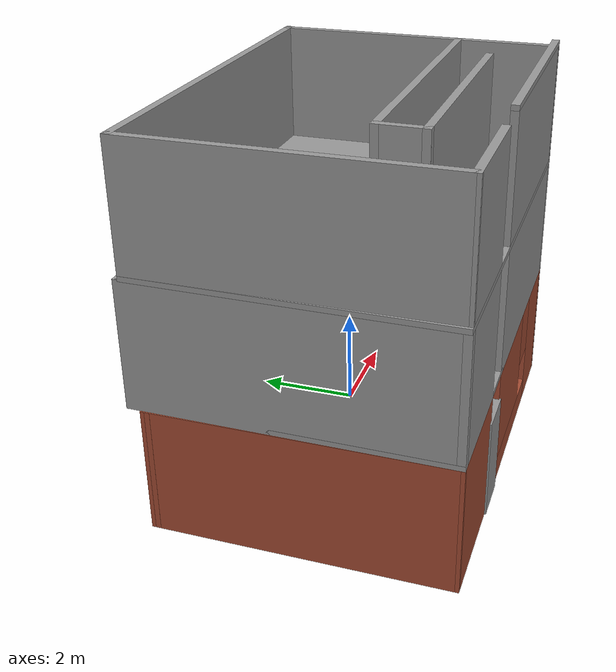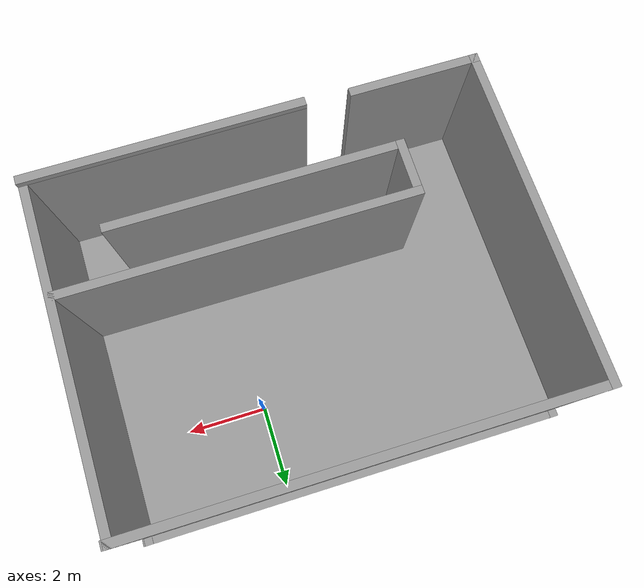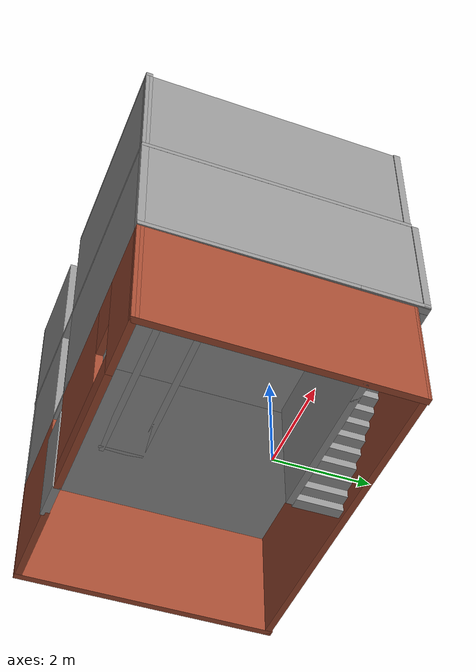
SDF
<?xml version='1.0'?>
<sdf version='1.6'>
  <model name='Myworld2'>
    <pose frame=''>-1.36365 -0.640195 0 0 -0 0</pose>
    <link name='Door_0'>
      <collision name='Door_0_Collision'>
        <geometry>
          <box>
            <size>0.9 0.17 2</size>
          </box>
        </geometry>
        <pose frame=''>0 0 1 0 -0 0</pose>
      </collision>
      <visual name='Door_0_Visual'>
        <pose frame=''>0 0 1 0 -0 0</pose>
        <geometry>
          <box>
            <size>0.9 0.17 2</size>
          </box>
        </geometry>
        <material>
          <script>
            <uri>file://media/materials/scripts/gazebo.material</uri>
            <name>Gazebo/Grey</name>
          </script>
        </material>
      </visual>
      <pose frame=''>-1.26635 -2.9398 0 0 -0 0</pose>
    </link>
    <link name='Floor_0'>
      <pose frame=''>0.026948 0.000105 2.5 0 -0 0</pose>
      <visual name='Floor_0_Visual_0'>
        <pose frame=''>-1.83898 0 0.05 0 -0 0</pose>
        <geometry>
          <box>
            <size>4.09864 5.98982 0.1</size>
          </box>
        </geometry>
        <material>
          <script>
            <uri>file://media/materials/scripts/gazebo.material</uri>
            <name>Gazebo/Grey</name>
          </script>
          <ambient>1 1 1 1</ambient>
        </material>
        <meta>
          <layer>1</layer>
        </meta>
      </visual>
      <collision name='Floor_0_Collision_0'>
        <geometry>
          <box>
            <size>4.09864 5.98982 0.1</size>
          </box>
        </geometry>
        <pose frame=''>-1.83898 0 0.05 0 -0 0</pose>
      </collision>
      <visual name='Floor_0_Visual_1'>
        <pose frame=''>2.04932 -0.746008 0.05 0 -0 0</pose>
        <geometry>
          <box>
            <size>3.67796 4.4978 0.1</size>
          </box>
        </geometry>
        <material>
          <script>
            <uri>file://media/materials/scripts/gazebo.material</uri>
            <name>Gazebo/Grey</name>
          </script>
          <ambient>1 1 1 1</ambient>
        </material>
        <meta>
          <layer>1</layer>
        </meta>
      </visual>
      <collision name='Floor_0_Collision_1'>
        <geometry>
          <box>
            <size>3.67796 4.4978 0.1</size>
          </box>
        </geometry>
        <pose frame=''>2.04932 -0.746008 0.05 0 -0 0</pose>
      </collision>
      <visual name='Floor_0_Visual_2'>
        <pose frame=''>3.79932 2.2489 0.05 0 -0 0</pose>
        <geometry>
          <box>
            <size>0.17796 1.49202 0.1</size>
          </box>
        </geometry>
        <material>
          <script>
            <uri>file://media/materials/scripts/gazebo.material</uri>
            <name>Gazebo/Grey</name>
          </script>
          <ambient>1 1 1 1</ambient>
        </material>
        <meta>
          <layer>1</layer>
        </meta>
      </visual>
      <collision name='Floor_0_Collision_2'>
        <geometry>
          <box>
            <size>0.17796 1.49202 0.1</size>
          </box>
        </geometry>
        <pose frame=''>3.79932 2.2489 0.05 0 -0 0</pose>
      </collision>
      <visual name='Floor_0_Visual_3'>
        <pose frame=''>1.96034 2.7489 0.05 0 -0 0</pose>
        <geometry>
          <box>
            <size>3.5 0.492015 0.1</size>
          </box>
        </geometry>
        <material>
          <script>
            <uri>file://media/materials/scripts/gazebo.material</uri>
            <name>Gazebo/Grey</name>
          </script>
          <ambient>1 1 1 1</ambient>
        </material>
        <meta>
          <layer>1</layer>
        </meta>
      </visual>
      <collision name='Floor_0_Collision_3'>
        <geometry>
          <box>
            <size>3.5 0.492015 0.1</size>
          </box>
        </geometry>
        <pose frame=''>1.96034 2.7489 0.05 0 -0 0</pose>
      </collision>
    </link>
    <link name='Floor_1'>
      <collision name='Floor_1_Collision'>
        <geometry>
          <box>
            <size>7.80459 5.85821 0.1</size>
          </box>
        </geometry>
        <pose frame=''>0 0 0.05 0 -0 0</pose>
      </collision>
      <visual name='Floor_1_Visual'>
        <pose frame=''>0 0 0.05 0 -0 0</pose>
        <geometry>
          <box>
            <size>7.80459 5.85821 0.1</size>
          </box>
        </geometry>
        <material>
          <script>
            <uri>file://media/materials/scripts/gazebo.material</uri>
            <name>Gazebo/Grey</name>
          </script>
          <ambient>1 1 1 1</ambient>
        </material>
        <meta>
          <layer>2</layer>
        </meta>
      </visual>
      <pose frame=''>-0.012952 -0.066395 5 0 -0 0</pose>
    </link>
    <link name='Floor_2'>
      <collision name='Floor_2_Collision'>
        <geometry>
          <box>
            <size>4.75 0.15 0.1</size>
          </box>
        </geometry>
        <pose frame=''>0 0 0.05 0 -0 0</pose>
      </collision>
      <visual name='Floor_2_Visual'>
        <pose frame=''>0 0 0.05 0 -0 0</pose>
        <geometry>
          <box>
            <size>4.75 0.15 0.1</size>
          </box>
        </geometry>
        <material>
          <script>
            <uri>file://media/materials/scripts/gazebo.material</uri>
            <name>Gazebo/Grey</name>
          </script>
          <ambient>1 1 1 1</ambient>
        </material>
        <meta>
          <layer>3</layer>
        </meta>
      </visual>
      <pose frame=''>1.51365 -2.91981 7.5 0 -0 0</pose>
    </link>
    <link name='Stairs_2'>
      <visual name='Stairs_2_Visual_0'>
        <pose frame=''>0.353954 2.003 0.083333 0 -0 1.5708</pose>
        <geometry>
          <box>
            <size>1 0.233333 0.166667</size>
          </box>
        </geometry>
        <material>
          <script>
            <uri>file://media/materials/scripts/gazebo.material</uri>
            <name>Gazebo/Grey</name>
          </script>
          <ambient>1 1 1 1</ambient>
        </material>
        <meta>
          <layer>0</layer>
        </meta>
      </visual>
      <collision name='Stairs_2_Collision_0'>
        <geometry>
          <box>
            <size>1 0.233333 0.166667</size>
          </box>
        </geometry>
        <pose frame=''>0.353954 2.003 0.083333 0 -0 1.5708</pose>
      </collision>
      <visual name='Stairs_2_Visual_1'>
        <pose frame=''>0.587288 2.003 0.25 0 -0 1.5708</pose>
        <geometry>
          <box>
            <size>1 0.233333 0.166667</size>
          </box>
        </geometry>
        <material>
          <script>
            <uri>file://media/materials/scripts/gazebo.material</uri>
            <name>Gazebo/Grey</name>
          </script>
          <ambient>1 1 1 1</ambient>
        </material>
        <meta>
          <layer>0</layer>
        </meta>
      </visual>
      <collision name='Stairs_2_Collision_1'>
        <geometry>
          <box>
            <size>1 0.233333 0.166667</size>
          </box>
        </geometry>
        <pose frame=''>0.587288 2.003 0.25 0 -0 1.5708</pose>
      </collision>
      <visual name='Stairs_2_Visual_2'>
        <pose frame=''>0.820621 2.003 0.416667 0 -0 1.5708</pose>
        <geometry>
          <box>
            <size>1 0.233333 0.166667</size>
          </box>
        </geometry>
        <material>
          <script>
            <uri>file://media/materials/scripts/gazebo.material</uri>
            <name>Gazebo/Grey</name>
          </script>
          <ambient>1 1 1 1</ambient>
        </material>
        <meta>
          <layer>0</layer>
        </meta>
      </visual>
      <collision name='Stairs_2_Collision_2'>
        <geometry>
          <box>
            <size>1 0.233333 0.166667</size>
          </box>
        </geometry>
        <pose frame=''>0.820621 2.003 0.416667 0 -0 1.5708</pose>
      </collision>
      <visual name='Stairs_2_Visual_3'>
        <pose frame=''>1.05395 2.003 0.583333 0 -0 1.5708</pose>
        <geometry>
          <box>
            <size>1 0.233333 0.166667</size>
          </box>
        </geometry>
        <material>
          <script>
            <uri>file://media/materials/scripts/gazebo.material</uri>
            <name>Gazebo/Grey</name>
          </script>
          <ambient>1 1 1 1</ambient>
        </material>
        <meta>
          <layer>0</layer>
        </meta>
      </visual>
      <collision name='Stairs_2_Collision_3'>
        <geometry>
          <box>
            <size>1 0.233333 0.166667</size>
          </box>
        </geometry>
        <pose frame=''>1.05395 2.003 0.583333 0 -0 1.5708</pose>
      </collision>
      <visual name='Stairs_2_Visual_4'>
        <pose frame=''>1.28729 2.003 0.75 0 -0 1.5708</pose>
        <geometry>
          <box>
            <size>1 0.233333 0.166667</size>
          </box>
        </geometry>
        <material>
          <script>
            <uri>file://media/materials/scripts/gazebo.material</uri>
            <name>Gazebo/Grey</name>
          </script>
          <ambient>1 1 1 1</ambient>
        </material>
        <meta>
          <layer>0</layer>
        </meta>
      </visual>
      <collision name='Stairs_2_Collision_4'>
        <geometry>
          <box>
            <size>1 0.233333 0.166667</size>
          </box>
        </geometry>
        <pose frame=''>1.28729 2.003 0.75 0 -0 1.5708</pose>
      </collision>
      <visual name='Stairs_2_Visual_5'>
        <pose frame=''>1.52062 2.003 0.916667 0 -0 1.5708</pose>
        <geometry>
          <box>
            <size>1 0.233333 0.166667</size>
          </box>
        </geometry>
        <material>
          <script>
            <uri>file://media/materials/scripts/gazebo.material</uri>
            <name>Gazebo/Grey</name>
          </script>
          <ambient>1 1 1 1</ambient>
        </material>
        <meta>
          <layer>0</layer>
        </meta>
      </visual>
      <collision name='Stairs_2_Collision_5'>
        <geometry>
          <box>
            <size>1 0.233333 0.166667</size>
          </box>
        </geometry>
        <pose frame=''>1.52062 2.003 0.916667 0 -0 1.5708</pose>
      </collision>
      <visual name='Stairs_2_Visual_6'>
        <pose frame=''>1.75395 2.003 1.08333 0 -0 1.5708</pose>
        <geometry>
          <box>
            <size>1 0.233333 0.166667</size>
          </box>
        </geometry>
        <material>
          <script>
            <uri>file://media/materials/scripts/gazebo.material</uri>
            <name>Gazebo/Grey</name>
          </script>
          <ambient>1 1 1 1</ambient>
        </material>
        <meta>
          <layer>0</layer>
        </meta>
      </visual>
      <collision name='Stairs_2_Collision_6'>
        <geometry>
          <box>
            <size>1 0.233333 0.166667</size>
          </box>
        </geometry>
        <pose frame=''>1.75395 2.003 1.08333 0 -0 1.5708</pose>
      </collision>
      <visual name='Stairs_2_Visual_7'>
        <pose frame=''>1.98729 2.003 1.25 0 -0 1.5708</pose>
        <geometry>
          <box>
            <size>1 0.233333 0.166667</size>
          </box>
        </geometry>
        <material>
          <script>
            <uri>file://media/materials/scripts/gazebo.material</uri>
            <name>Gazebo/Grey</name>
          </script>
          <ambient>1 1 1 1</ambient>
        </material>
        <meta>
          <layer>0</layer>
        </meta>
      </visual>
      <collision name='Stairs_2_Collision_7'>
        <geometry>
          <box>
            <size>1 0.233333 0.166667</size>
          </box>
        </geometry>
        <pose frame=''>1.98729 2.003 1.25 0 -0 1.5708</pose>
      </collision>
      <visual name='Stairs_2_Visual_8'>
        <pose frame=''>2.22062 2.003 1.41667 0 -0 1.5708</pose>
        <geometry>
          <box>
            <size>1 0.233333 0.166667</size>
          </box>
        </geometry>
        <material>
          <script>
            <uri>file://media/materials/scripts/gazebo.material</uri>
            <name>Gazebo/Grey</name>
          </script>
          <ambient>1 1 1 1</ambient>
        </material>
        <meta>
          <layer>0</layer>
        </meta>
      </visual>
      <collision name='Stairs_2_Collision_8'>
        <geometry>
          <box>
            <size>1 0.233333 0.166667</size>
          </box>
        </geometry>
        <pose frame=''>2.22062 2.003 1.41667 0 -0 1.5708</pose>
      </collision>
      <visual name='Stairs_2_Visual_9'>
        <pose frame=''>2.45396 2.003 1.58333 0 -0 1.5708</pose>
        <geometry>
          <box>
            <size>1 0.233333 0.166667</size>
          </box>
        </geometry>
        <material>
          <script>
            <uri>file://media/materials/scripts/gazebo.material</uri>
            <name>Gazebo/Grey</name>
          </script>
          <ambient>1 1 1 1</ambient>
        </material>
        <meta>
          <layer>0</layer>
        </meta>
      </visual>
      <collision name='Stairs_2_Collision_9'>
        <geometry>
          <box>
            <size>1 0.233333 0.166667</size>
          </box>
        </geometry>
        <pose frame=''>2.45396 2.003 1.58333 0 -0 1.5708</pose>
      </collision>
      <visual name='Stairs_2_Visual_10'>
        <pose frame=''>2.68729 2.003 1.75 0 -0 1.5708</pose>
        <geometry>
          <box>
            <size>1 0.233333 0.166667</size>
          </box>
        </geometry>
        <material>
          <script>
            <uri>file://media/materials/scripts/gazebo.material</uri>
            <name>Gazebo/Grey</name>
          </script>
          <ambient>1 1 1 1</ambient>
        </material>
        <meta>
          <layer>0</layer>
        </meta>
      </visual>
      <collision name='Stairs_2_Collision_10'>
        <geometry>
          <box>
            <size>1 0.233333 0.166667</size>
          </box>
        </geometry>
        <pose frame=''>2.68729 2.003 1.75 0 -0 1.5708</pose>
      </collision>
      <visual name='Stairs_2_Visual_11'>
        <pose frame=''>2.92062 2.003 1.91667 0 -0 1.5708</pose>
        <geometry>
          <box>
            <size>1 0.233333 0.166667</size>
          </box>
        </geometry>
        <material>
          <script>
            <uri>file://media/materials/scripts/gazebo.material</uri>
            <name>Gazebo/Grey</name>
          </script>
          <ambient>1 1 1 1</ambient>
        </material>
        <meta>
          <layer>0</layer>
        </meta>
      </visual>
      <collision name='Stairs_2_Collision_11'>
        <geometry>
          <box>
            <size>1 0.233333 0.166667</size>
          </box>
        </geometry>
        <pose frame=''>2.92062 2.003 1.91667 0 -0 1.5708</pose>
      </collision>
      <visual name='Stairs_2_Visual_12'>
        <pose frame=''>3.15395 2.003 2.08333 0 -0 1.5708</pose>
        <geometry>
          <box>
            <size>1 0.233333 0.166667</size>
          </box>
        </geometry>
        <material>
          <script>
            <uri>file://media/materials/scripts/gazebo.material</uri>
            <name>Gazebo/Grey</name>
          </script>
          <ambient>1 1 1 1</ambient>
        </material>
        <meta>
          <layer>0</layer>
        </meta>
      </visual>
      <collision name='Stairs_2_Collision_12'>
        <geometry>
          <box>
            <size>1 0.233333 0.166667</size>
          </box>
        </geometry>
        <pose frame=''>3.15395 2.003 2.08333 0 -0 1.5708</pose>
      </collision>
      <visual name='Stairs_2_Visual_13'>
        <pose frame=''>3.38729 2.003 2.25 0 -0 1.5708</pose>
        <geometry>
          <box>
            <size>1 0.233333 0.166667</size>
          </box>
        </geometry>
        <material>
          <script>
            <uri>file://media/materials/scripts/gazebo.material</uri>
            <name>Gazebo/Grey</name>
          </script>
          <ambient>1 1 1 1</ambient>
        </material>
        <meta>
          <layer>0</layer>
        </meta>
      </visual>
      <collision name='Stairs_2_Collision_13'>
        <geometry>
          <box>
            <size>1 0.233333 0.166667</size>
          </box>
        </geometry>
        <pose frame=''>3.38729 2.003 2.25 0 -0 1.5708</pose>
      </collision>
      <visual name='Stairs_2_Visual_14'>
        <pose frame=''>3.62062 2.003 2.41667 0 -0 1.5708</pose>
        <geometry>
          <box>
            <size>1 0.233333 0.166667</size>
          </box>
        </geometry>
        <material>
          <script>
            <uri>file://media/materials/scripts/gazebo.material</uri>
            <name>Gazebo/Grey</name>
          </script>
          <ambient>1 1 1 1</ambient>
        </material>
        <meta>
          <layer>0</layer>
        </meta>
      </visual>
      <collision name='Stairs_2_Collision_14'>
        <geometry>
          <box>
            <size>1 0.233333 0.166667</size>
          </box>
        </geometry>
        <pose frame=''>3.62062 2.003 2.41667 0 -0 1.5708</pose>
      </collision>
    </link>
    <link name='Wall_0'>
      <collision name='Wall_0_Collision'>
        <geometry>
          <box>
            <size>2.25 0.15 2.5</size>
          </box>
        </geometry>
        <pose frame=''>0 0 1.25 0 -0 0</pose>
      </collision>
      <visual name='Wall_0_Visual'>
        <pose frame=''>0 0 1.25 0 -0 0</pose>
        <geometry>
          <box>
            <size>2.25 0.15 2.5</size>
          </box>
        </geometry>
        <material>
          <script>
            <uri>file://media/materials/scripts/gazebo.material</uri>
            <name>Gazebo/Bricks</name>
          </script>
          <ambient>1 1 1 1</ambient>
        </material>
        <meta>
          <layer>0</layer>
        </meta>
      </visual>
      <pose frame=''>-2.73635 -2.91981 0 0 -0 3.14159</pose>
    </link>
    <link name='Wall_1'>
      <collision name='Wall_1_Collision'>
        <geometry>
          <box>
            <size>5.72428 0.15 2.5</size>
          </box>
        </geometry>
        <pose frame=''>0 0 1.25 0 -0 0</pose>
      </collision>
      <visual name='Wall_1_Visual'>
        <pose frame=''>0 0 1.25 0 -0 0</pose>
        <geometry>
          <box>
            <size>5.72428 0.15 2.5</size>
          </box>
        </geometry>
        <material>
          <script>
            <uri>file://media/materials/scripts/gazebo.material</uri>
            <name>Gazebo/Bricks</name>
          </script>
          <ambient>1 1 1 1</ambient>
        </material>
        <meta>
          <layer>0</layer>
        </meta>
      </visual>
      <pose frame=''>-3.79965 -0.132696 0 0 -0 1.57557</pose>
    </link>
    <link name='Wall_10'>
      <collision name='Wall_10_Collision'>
        <geometry>
          <box>
            <size>4.75 0.15 2.5</size>
          </box>
        </geometry>
        <pose frame=''>0 0 1.25 0 -0 0</pose>
      </collision>
      <visual name='Wall_10_Visual'>
        <pose frame=''>0 0 1.25 0 -0 0</pose>
        <geometry>
          <box>
            <size>4.75 0.15 2.5</size>
          </box>
        </geometry>
        <material>
          <script>
            <uri>file://media/materials/scripts/gazebo.material</uri>
            <name>Gazebo/Grey</name>
          </script>
          <ambient>1 1 1 1</ambient>
        </material>
        <meta>
          <layer>1</layer>
        </meta>
      </visual>
      <pose frame=''>1.51365 -2.91981 2.5 0 -0 3.14159</pose>
    </link>
    <link name='Wall_11'>
      <collision name='Wall_11_Collision'>
        <geometry>
          <box>
            <size>6 0.15 2.5</size>
          </box>
        </geometry>
        <pose frame=''>0 0 1.25 0 -0 0</pose>
      </collision>
      <visual name='Wall_11_Visual'>
        <pose frame=''>0 0 1.25 0 -0 0</pose>
        <geometry>
          <box>
            <size>6 0.15 2.5</size>
          </box>
        </geometry>
        <material>
          <script>
            <uri>file://media/materials/scripts/gazebo.material</uri>
            <name>Gazebo/Grey</name>
          </script>
          <ambient>1 1 1 1</ambient>
        </material>
        <meta>
          <layer>1</layer>
        </meta>
      </visual>
      <pose frame=''>0.808045 -0.94446 2.5 0 -0 3.14159</pose>
    </link>
    <link name='Wall_12'>
      <collision name='Wall_12_Collision'>
        <geometry>
          <box>
            <size>1 0.15 2.5</size>
          </box>
        </geometry>
        <pose frame=''>0 0 1.25 0 -0 0</pose>
      </collision>
      <visual name='Wall_12_Visual'>
        <pose frame=''>0 0 1.25 0 -0 0</pose>
        <geometry>
          <box>
            <size>1 0.15 2.5</size>
          </box>
        </geometry>
        <material>
          <script>
            <uri>file://media/materials/scripts/gazebo.material</uri>
            <name>Gazebo/Grey</name>
          </script>
          <ambient>1 1 1 1</ambient>
        </material>
        <meta>
          <layer>1</layer>
        </meta>
      </visual>
      <pose frame=''>-2.11695 -1.36946 2.5 0 -0 -1.5708</pose>
    </link>
    <link name='Wall_13'>
      <collision name='Wall_13_Collision'>
        <geometry>
          <box>
            <size>5 0.15 2.5</size>
          </box>
        </geometry>
        <pose frame=''>0 0 1.25 0 -0 0</pose>
      </collision>
      <visual name='Wall_13_Visual'>
        <pose frame=''>0 0 1.25 0 -0 0</pose>
        <geometry>
          <box>
            <size>5 0.15 2.5</size>
          </box>
        </geometry>
        <material>
          <script>
            <uri>file://media/materials/scripts/gazebo.material</uri>
            <name>Gazebo/Grey</name>
          </script>
          <ambient>1 1 1 1</ambient>
        </material>
        <meta>
          <layer>1</layer>
        </meta>
      </visual>
      <pose frame=''>0.308045 -1.79446 2.5 0 -0 0</pose>
    </link>
    <link name='Wall_15'>
      <collision name='Wall_15_Collision'>
        <geometry>
          <box>
            <size>2.25 0.15 2.5</size>
          </box>
        </geometry>
        <pose frame=''>0 0 1.25 0 -0 0</pose>
      </collision>
      <visual name='Wall_15_Visual'>
        <pose frame=''>0 0 1.25 0 -0 0</pose>
        <geometry>
          <box>
            <size>2.25 0.15 2.5</size>
          </box>
        </geometry>
        <material>
          <script>
            <uri>file://media/materials/scripts/gazebo.material</uri>
            <name>Gazebo/Grey</name>
          </script>
          <ambient>1 1 1 1</ambient>
        </material>
        <meta>
          <layer>2</layer>
        </meta>
      </visual>
      <pose frame=''>-2.73635 -2.91981 5 0 -0 3.14159</pose>
    </link>
    <link name='Wall_16'>
      <collision name='Wall_16_Collision'>
        <geometry>
          <box>
            <size>5.85707 0.15 2.5</size>
          </box>
        </geometry>
        <pose frame=''>0 0 1.25 0 -0 0</pose>
      </collision>
      <visual name='Wall_16_Visual'>
        <pose frame=''>0 0 1.25 0 -0 0</pose>
        <geometry>
          <box>
            <size>5.85707 0.15 2.5</size>
          </box>
        </geometry>
        <material>
          <script>
            <uri>file://media/materials/scripts/gazebo.material</uri>
            <name>Gazebo/Grey</name>
          </script>
          <ambient>1 1 1 1</ambient>
        </material>
        <meta>
          <layer>2</layer>
        </meta>
      </visual>
      <pose frame=''>-3.81295 -0.066395 5 0 -0 1.58012</pose>
    </link>
    <link name='Wall_17'>
      <collision name='Wall_17_Collision'>
        <geometry>
          <box>
            <size>7.75 0.15 2.5</size>
          </box>
        </geometry>
        <pose frame=''>0 0 1.25 0 -0 0</pose>
      </collision>
      <visual name='Wall_17_Visual'>
        <pose frame=''>0 0 1.25 0 -0 0</pose>
        <geometry>
          <box>
            <size>7.75 0.15 2.5</size>
          </box>
        </geometry>
        <material>
          <script>
            <uri>file://media/materials/scripts/gazebo.material</uri>
            <name>Gazebo/Grey</name>
          </script>
          <ambient>1 1 1 1</ambient>
        </material>
        <meta>
          <layer>2</layer>
        </meta>
      </visual>
      <pose frame=''>-0.012952 2.78701 5 0 -0 0</pose>
    </link>
    <link name='Wall_18'>
      <collision name='Wall_18_Collision'>
        <geometry>
          <box>
            <size>5.85707 0.15 2.5</size>
          </box>
        </geometry>
        <pose frame=''>0 0 1.25 0 -0 0</pose>
      </collision>
      <visual name='Wall_18_Visual'>
        <pose frame=''>0 0 1.25 0 -0 0</pose>
        <geometry>
          <box>
            <size>5.85707 0.15 2.5</size>
          </box>
        </geometry>
        <material>
          <script>
            <uri>file://media/materials/scripts/gazebo.material</uri>
            <name>Gazebo/Grey</name>
          </script>
          <ambient>1 1 1 1</ambient>
        </material>
        <meta>
          <layer>2</layer>
        </meta>
      </visual>
      <pose frame=''>3.78705 -0.066395 5 0 -0 -1.56147</pose>
    </link>
    <link name='Wall_19'>
      <collision name='Wall_19_Collision'>
        <geometry>
          <box>
            <size>4.75 0.15 2.5</size>
          </box>
        </geometry>
        <pose frame=''>0 0 1.25 0 -0 0</pose>
      </collision>
      <visual name='Wall_19_Visual'>
        <pose frame=''>0 0 1.25 0 -0 0</pose>
        <geometry>
          <box>
            <size>4.75 0.15 2.5</size>
          </box>
        </geometry>
        <material>
          <script>
            <uri>file://media/materials/scripts/gazebo.material</uri>
            <name>Gazebo/Grey</name>
          </script>
          <ambient>1 1 1 1</ambient>
        </material>
        <meta>
          <layer>2</layer>
        </meta>
      </visual>
      <pose frame=''>1.51365 -2.91981 5 0 -0 3.14159</pose>
    </link>
    <link name='Wall_2'>
      <collision name='Wall_2_Collision'>
        <geometry>
          <box>
            <size>7.75 0.15 2.5</size>
          </box>
        </geometry>
        <pose frame=''>0 0 1.25 0 -0 0</pose>
      </collision>
      <visual name='Wall_2_Visual'>
        <pose frame=''>0 0 1.25 0 -0 0</pose>
        <geometry>
          <box>
            <size>7.75 0.15 2.5</size>
          </box>
        </geometry>
        <material>
          <script>
            <uri>file://media/materials/scripts/gazebo.material</uri>
            <name>Gazebo/Bricks</name>
          </script>
          <ambient>1 1 1 1</ambient>
        </material>
        <meta>
          <layer>0</layer>
        </meta>
      </visual>
      <pose frame=''>-0.012952 2.62781 0 0 -0 0</pose>
    </link>
    <link name='Wall_20'>
      <collision name='Wall_20_Collision'>
        <geometry>
          <box>
            <size>6 0.15 2.5</size>
          </box>
        </geometry>
        <pose frame=''>0 0 1.25 0 -0 0</pose>
      </collision>
      <visual name='Wall_20_Visual'>
        <pose frame=''>0 0 1.25 0 -0 0</pose>
        <geometry>
          <box>
            <size>6 0.15 2.5</size>
          </box>
        </geometry>
        <material>
          <script>
            <uri>file://media/materials/scripts/gazebo.material</uri>
            <name>Gazebo/Grey</name>
          </script>
          <ambient>1 1 1 1</ambient>
        </material>
        <meta>
          <layer>2</layer>
        </meta>
      </visual>
      <pose frame=''>0.808045 -0.94446 5 0 -0 3.14159</pose>
    </link>
    <link name='Wall_21'>
      <collision name='Wall_21_Collision'>
        <geometry>
          <box>
            <size>1 0.15 2.5</size>
          </box>
        </geometry>
        <pose frame=''>0 0 1.25 0 -0 0</pose>
      </collision>
      <visual name='Wall_21_Visual'>
        <pose frame=''>0 0 1.25 0 -0 0</pose>
        <geometry>
          <box>
            <size>1 0.15 2.5</size>
          </box>
        </geometry>
        <material>
          <script>
            <uri>file://media/materials/scripts/gazebo.material</uri>
            <name>Gazebo/Grey</name>
          </script>
          <ambient>1 1 1 1</ambient>
        </material>
        <meta>
          <layer>2</layer>
        </meta>
      </visual>
      <pose frame=''>-2.11695 -1.36946 5 0 -0 -1.5708</pose>
    </link>
    <link name='Wall_22'>
      <collision name='Wall_22_Collision'>
        <geometry>
          <box>
            <size>5 0.15 2.5</size>
          </box>
        </geometry>
        <pose frame=''>0 0 1.25 0 -0 0</pose>
      </collision>
      <visual name='Wall_22_Visual'>
        <pose frame=''>0 0 1.25 0 -0 0</pose>
        <geometry>
          <box>
            <size>5 0.15 2.5</size>
          </box>
        </geometry>
        <material>
          <script>
            <uri>file://media/materials/scripts/gazebo.material</uri>
            <name>Gazebo/Grey</name>
          </script>
          <ambient>1 1 1 1</ambient>
        </material>
        <meta>
          <layer>2</layer>
        </meta>
      </visual>
      <pose frame=''>0.308045 -1.79446 5 0 -0 0</pose>
    </link>
    <link name='Wall_23'>
      <collision name='Wall_23_Collision'>
        <geometry>
          <box>
            <size>0.5 0.15 2.5</size>
          </box>
        </geometry>
        <pose frame=''>0 0 1.25 0 -0 0</pose>
      </collision>
      <visual name='Wall_23_Visual'>
        <pose frame=''>0 0 1.25 0 -0 0</pose>
        <geometry>
          <box>
            <size>0.5 0.15 2.5</size>
          </box>
        </geometry>
        <material>
          <script>
            <uri>file://media/materials/scripts/gazebo.material</uri>
            <name>Gazebo/Grey</name>
          </script>
          <ambient>1 1 1 1</ambient>
        </material>
        <meta>
          <layer>0</layer>
        </meta>
      </visual>
      <pose frame=''>3.55047 1.42701 0 0 -0 0</pose>
    </link>
    <link name='Wall_24'>
      <collision name='Wall_24_Collision'>
        <geometry>
          <box>
            <size>3.5 0.15 2.5</size>
          </box>
        </geometry>
        <pose frame=''>0 0 1.25 0 -0 0</pose>
      </collision>
      <visual name='Wall_24_Visual'>
        <pose frame=''>0 0 1.25 0 -0 0</pose>
        <geometry>
          <box>
            <size>3.5 0.15 2.5</size>
          </box>
        </geometry>
        <material>
          <script>
            <uri>file://media/materials/scripts/gazebo.material</uri>
            <name>Gazebo/Grey</name>
          </script>
          <ambient>1 1 1 1</ambient>
        </material>
        <meta>
          <layer>0</layer>
        </meta>
      </visual>
      <pose frame=''>2.05047 1.42701 0 0 -0 3.14159</pose>
    </link>
    <link name='Wall_3'>
      <collision name='Wall_3_Collision'>
        <geometry>
          <box>
            <size>5.72428 0.15 2.5</size>
          </box>
        </geometry>
        <pose frame=''>0 0 1.25 0 -0 0</pose>
      </collision>
      <visual name='Wall_3_Visual'>
        <pose frame=''>0 0 1.25 0 -0 0</pose>
        <geometry>
          <box>
            <size>5.72428 0.15 2.5</size>
          </box>
        </geometry>
        <material>
          <script>
            <uri>file://media/materials/scripts/gazebo.material</uri>
            <name>Gazebo/Bricks</name>
          </script>
          <ambient>1 1 1 1</ambient>
        </material>
        <meta>
          <layer>0</layer>
        </meta>
      </visual>
      <pose frame=''>3.80035 -0.132696 0 0 -0 -1.56602</pose>
    </link>
    <link name='Wall_4'>
      <pose frame=''>1.51365 -2.91981 0 0 -0 3.14159</pose>
      <visual name='Wall_4_Visual_0'>
        <pose frame=''>-1.63438 0 1.25 0 -0 0</pose>
        <geometry>
          <box>
            <size>1.48125 0.15 2.5</size>
          </box>
        </geometry>
        <material>
          <script>
            <uri>file://media/materials/scripts/gazebo.material</uri>
            <name>Gazebo/Bricks</name>
          </script>
          <ambient>1 1 1 1</ambient>
        </material>
        <meta>
          <layer>0</layer>
        </meta>
      </visual>
      <collision name='Wall_4_Collision_0'>
        <geometry>
          <box>
            <size>1.48125 0.15 2.5</size>
          </box>
        </geometry>
        <pose frame=''>-1.63438 0 1.25 0 -0 0</pose>
      </collision>
      <visual name='Wall_4_Visual_1'>
        <pose frame=''>0.740623 0 0.25 0 -0 0</pose>
        <geometry>
          <box>
            <size>3.26875 0.15 0.5</size>
          </box>
        </geometry>
        <material>
          <script>
            <uri>file://media/materials/scripts/gazebo.material</uri>
            <name>Gazebo/Bricks</name>
          </script>
          <ambient>1 1 1 1</ambient>
        </material>
        <meta>
          <layer>0</layer>
        </meta>
      </visual>
      <collision name='Wall_4_Collision_1'>
        <geometry>
          <box>
            <size>3.26875 0.15 0.5</size>
          </box>
        </geometry>
        <pose frame=''>0.740623 0 0.25 0 -0 0</pose>
      </collision>
      <visual name='Wall_4_Visual_2'>
        <pose frame=''>1.14062 0 1.5 0 -0 0</pose>
        <geometry>
          <box>
            <size>2.46875 0.15 2</size>
          </box>
        </geometry>
        <material>
          <script>
            <uri>file://media/materials/scripts/gazebo.material</uri>
            <name>Gazebo/Bricks</name>
          </script>
          <ambient>1 1 1 1</ambient>
        </material>
        <meta>
          <layer>0</layer>
        </meta>
      </visual>
      <collision name='Wall_4_Collision_2'>
        <geometry>
          <box>
            <size>2.46875 0.15 2</size>
          </box>
        </geometry>
        <pose frame=''>1.14062 0 1.5 0 -0 0</pose>
      </collision>
      <visual name='Wall_4_Visual_3'>
        <pose frame=''>-0.493753 0 1.9 0 -0 0</pose>
        <geometry>
          <box>
            <size>0.8 0.15 1.2</size>
          </box>
        </geometry>
        <material>
          <script>
            <uri>file://media/materials/scripts/gazebo.material</uri>
            <name>Gazebo/Bricks</name>
          </script>
          <ambient>1 1 1 1</ambient>
        </material>
        <meta>
          <layer>0</layer>
        </meta>
      </visual>
      <collision name='Wall_4_Collision_3'>
        <geometry>
          <box>
            <size>0.8 0.15 1.2</size>
          </box>
        </geometry>
        <pose frame=''>-0.493753 0 1.9 0 -0 0</pose>
      </collision>
    </link>
    <link name='Wall_6'>
      <collision name='Wall_6_Collision'>
        <geometry>
          <box>
            <size>2.25 0.15 2.5</size>
          </box>
        </geometry>
        <pose frame=''>0 0 1.25 0 -0 0</pose>
      </collision>
      <visual name='Wall_6_Visual'>
        <pose frame=''>0 0 1.25 0 -0 0</pose>
        <geometry>
          <box>
            <size>2.25 0.15 2.5</size>
          </box>
        </geometry>
        <material>
          <script>
            <uri>file://media/materials/scripts/gazebo.material</uri>
            <name>Gazebo/Grey</name>
          </script>
          <ambient>1 1 1 1</ambient>
        </material>
        <meta>
          <layer>1</layer>
        </meta>
      </visual>
      <pose frame=''>-2.73635 -2.91981 2.5 0 -0 3.14159</pose>
    </link>
    <link name='Wall_7'>
      <collision name='Wall_7_Collision'>
        <geometry>
          <box>
            <size>5.99079 0.15 2.5</size>
          </box>
        </geometry>
        <pose frame=''>0 0 1.25 0 -0 0</pose>
      </collision>
      <visual name='Wall_7_Visual'>
        <pose frame=''>0 0 1.25 0 -0 0</pose>
        <geometry>
          <box>
            <size>5.99079 0.15 2.5</size>
          </box>
        </geometry>
        <material>
          <script>
            <uri>file://media/materials/scripts/gazebo.material</uri>
            <name>Gazebo/Grey</name>
          </script>
          <ambient>1 1 1 1</ambient>
        </material>
        <meta>
          <layer>1</layer>
        </meta>
      </visual>
      <pose frame=''>-3.78635 0.000105 2.5 0 -0 1.5708</pose>
    </link>
    <link name='Wall_8'>
      <collision name='Wall_8_Collision'>
        <geometry>
          <box>
            <size>7.75 0.15 2.5</size>
          </box>
        </geometry>
        <pose frame=''>0 0 1.25 0 -0 0</pose>
      </collision>
      <visual name='Wall_8_Visual'>
        <pose frame=''>0 0 1.25 0 -0 0</pose>
        <geometry>
          <box>
            <size>7.75 0.15 2.5</size>
          </box>
        </geometry>
        <material>
          <script>
            <uri>file://media/materials/scripts/gazebo.material</uri>
            <name>Gazebo/Grey</name>
          </script>
          <ambient>1 1 1 1</ambient>
        </material>
        <meta>
          <layer>1</layer>
        </meta>
      </visual>
      <pose frame=''>0.040248 2.92002 2.5 0 -0 0</pose>
    </link>
    <link name='Wall_9'>
      <collision name='Wall_9_Collision'>
        <geometry>
          <box>
            <size>5.99079 0.15 2.5</size>
          </box>
        </geometry>
        <pose frame=''>0 0 1.25 0 -0 0</pose>
      </collision>
      <visual name='Wall_9_Visual'>
        <pose frame=''>0 0 1.25 0 -0 0</pose>
        <geometry>
          <box>
            <size>5.99079 0.15 2.5</size>
          </box>
        </geometry>
        <material>
          <script>
            <uri>file://media/materials/scripts/gazebo.material</uri>
            <name>Gazebo/Grey</name>
          </script>
          <ambient>1 1 1 1</ambient>
        </material>
        <meta>
          <layer>1</layer>
        </meta>
      </visual>
      <pose frame=''>3.81365 0.000105 2.5 0 -0 -1.5708</pose>
    </link>
    <static>1</static>
  </model>
</sdf>
